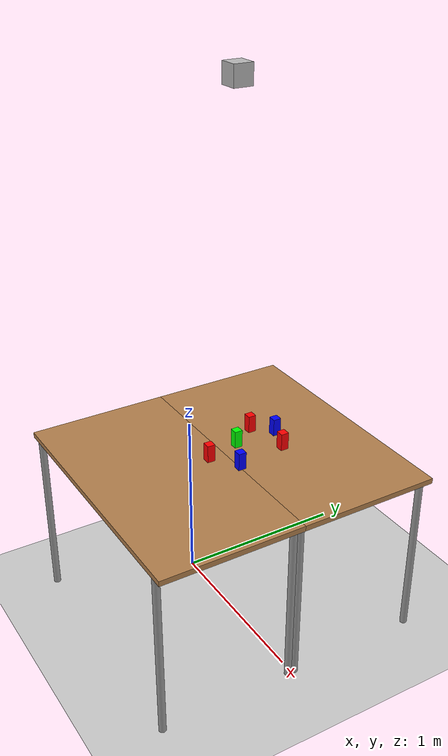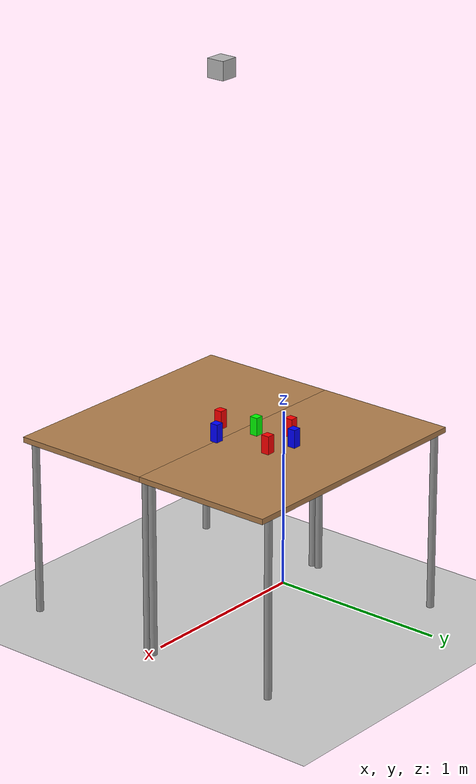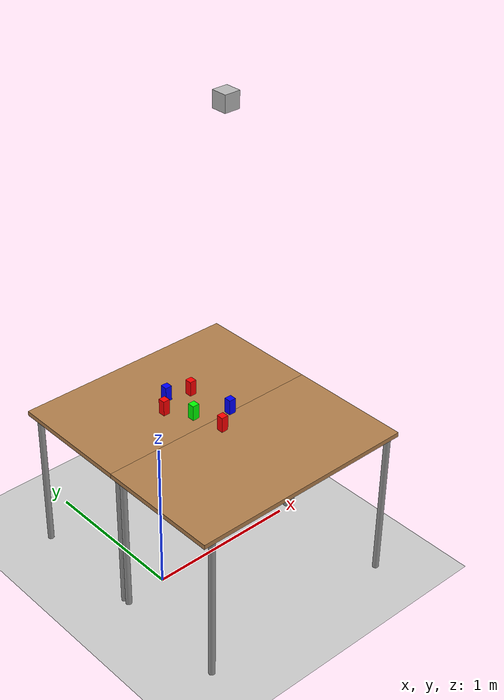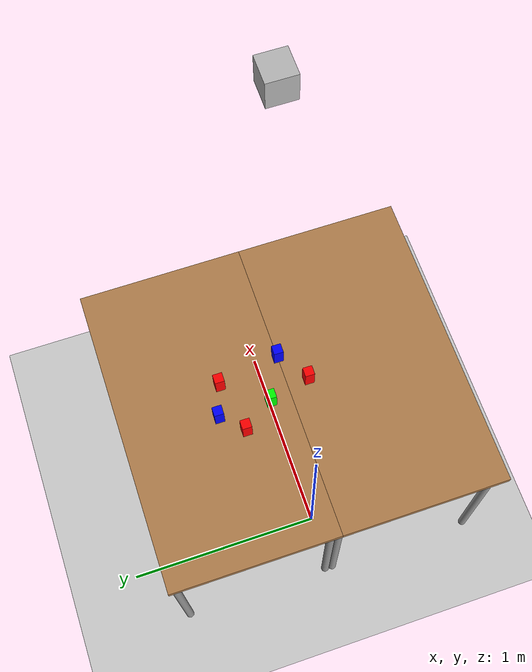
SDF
<sdf version="1.7">
 <world name="default">
  <light name="sun" type="directional">
   <pose>0 0 10 0 -0 0</pose>
   <diffuse>0.8 0.8 0.8 1</diffuse>
   <specular>0.2 0.2 0.2 1</specular>
   <attenuation>
    <range>1000</range>
    <constant>0.9</constant>
    <linear>0.01</linear>
    <quadratic>0.001</quadratic>
   </attenuation>
   <direction>-0.5 0.1 -0.9</direction>
   <spot><inner_angle>0</inner_angle><outer_angle>0</outer_angle><falloff>0</falloff></spot>
  </light>
  <model name="ground_plane">
   <static>1</static>
   <link name="link">
    <collision name="collision">
     <geometry><plane><normal>0 0 1</normal><size>100 100</size></plane></geometry>
     <surface>
      <contact><collide_bitmask>65535</collide_bitmask></contact>
      <friction><ode><mu>100</mu><mu2>50</mu2></ode></friction>
     </surface>
    </collision>
    <visual name="visual">
     <cast_shadows>0</cast_shadows>
     <geometry><plane><normal>0 0 1</normal><size>100 100</size></plane></geometry>
     <material>
      <script><uri>file://media/materials/scripts/gazebo.material</uri><name>Gazebo/Grey</name></script>
     </material>
    </visual>
   </link>
  </model>
  <gravity>0 0 -9.8</gravity>
  <magnetic_field>6e-06 2.3e-05 -4.2e-05</magnetic_field>
  <atmosphere type="adiabatic"/>
  <physics name="default_physics" default="0" type="ode">
   <max_step_size>0.001</max_step_size>
   <real_time_factor>1</real_time_factor>
   <real_time_update_rate>1000</real_time_update_rate>
  </physics>
  <scene><ambient>0.4 0.4 0.4 1</ambient><background>0.7 0.7 0.7 1</background><shadows>0</shadows></scene>
  <audio><device>default</device></audio>
  <spherical_coordinates>
   <surface_model>EARTH_WGS84</surface_model>
   <latitude_deg>0</latitude_deg>
   <longitude_deg>0</longitude_deg>
   <elevation>0</elevation>
   <heading_deg>0</heading_deg>
  </spherical_coordinates>
  <model name="blue_box_2">
   <link name="link">
    <inertial>
     <mass>0.1</mass>
     <inertia>
      <ixx>0.00010417</ixx>
      <ixy>0</ixy>
      <ixz>0</ixz>
      <iyy>0.00010417</iyy>
      <iyz>0</iyz>
      <izz>4.167e-05</izz>
     </inertia>
    </inertial>
    <visual name="visual">
     <geometry><box><size>0.045 0.045 0.1</size></box></geometry>
     <material>
      <script><name>Gazebo/Grey</name><uri>file://media/materials/scripts/gazebo.material</uri></script>
      <shader type="vertex"><normal_map>__default__</normal_map></shader>
      <ambient>0 0 1 1</ambient>
      <diffuse>0 0 1 1</diffuse>
      <specular>0 0 1 1</specular>
      <emissive>0 0 1 1</emissive>
     </material>
    </visual>
    <collision name="collision">
     <geometry><box><size>0.045 0.045 0.1</size></box></geometry>
     <surface>
      <friction>
       <ode><mu>1</mu><mu2>1</mu2><fdir1>0 0 0</fdir1><slip1>0</slip1><slip2>0</slip2></ode>
       <torsional>
        <coefficient>1</coefficient>
        <patch_radius>0</patch_radius>
        <surface_radius>0</surface_radius>
        <use_patch_radius>1</use_patch_radius>
        <ode><slip>0</slip></ode>
       </torsional>
      </friction>
      <bounce><restitution_coefficient>0</restitution_coefficient><threshold>1e+06</threshold></bounce>
      <contact>
       <collide_without_contact>0</collide_without_contact>
       <collide_without_contact_bitmask>1</collide_without_contact_bitmask>
       <collide_bitmask>1</collide_bitmask>
       <ode>
        <soft_cfm>0</soft_cfm>
        <soft_erp>0.2</soft_erp>
        <kp>1e+13</kp>
        <kd>1</kd>
        <max_vel>0.01</max_vel>
        <min_depth>0</min_depth>
       </ode>
       <bullet>
        <split_impulse>1</split_impulse>
        <split_impulse_penetration_threshold>-0.01</split_impulse_penetration_threshold>
        <soft_cfm>0</soft_cfm>
        <soft_erp>0.2</soft_erp>
        <kp>1e+13</kp>
        <kd>1</kd>
       </bullet>
      </contact>
     </surface>
    </collision>
   </link>
   <static>0</static>
   <pose>0.55 0.00019 1.065 -2e-06 4.8e-05 -0.017482</pose>
  </model>
  <model name="green_box_1">
   <link name="link">
    <inertial>
     <mass>0.1</mass>
     <inertia>
      <ixx>0.00010583</ixx>
      <ixy>0</ixy>
      <ixz>0</ixz>
      <iyy>0.00010583</iyy>
      <iyz>0</iyz>
      <izz>4.5e-05</izz>
     </inertia>
    </inertial>
    <visual name="visual">
     <geometry><box><size>0.045 0.045 0.1</size></box></geometry>
     <material>
      <script><name>Gazebo/Grey</name><uri>file://media/materials/scripts/gazebo.material</uri></script>
      <shader type="vertex"><normal_map>__default__</normal_map></shader>
      <ambient>0 1 0 1</ambient>
      <diffuse>0 1 0 1</diffuse>
      <specular>0 1 0 1</specular>
      <emissive>0 1 0 1</emissive>
     </material>
    </visual>
    <collision name="collision">
     <geometry><cylinder><radius>0.03</radius><length>0.1</length></cylinder></geometry>
     <surface>
      <friction>
       <ode><mu>1</mu><mu2>1</mu2><fdir1>0 0 0</fdir1><slip1>0</slip1><slip2>0</slip2></ode>
       <torsional>
        <coefficient>1</coefficient>
        <patch_radius>0</patch_radius>
        <surface_radius>0</surface_radius>
        <use_patch_radius>1</use_patch_radius>
        <ode><slip>0</slip></ode>
       </torsional>
      </friction>
      <bounce><restitution_coefficient>0</restitution_coefficient><threshold>1e+06</threshold></bounce>
      <contact>
       <collide_without_contact>0</collide_without_contact>
       <collide_without_contact_bitmask>1</collide_without_contact_bitmask>
       <collide_bitmask>1</collide_bitmask>
       <ode>
        <soft_cfm>0</soft_cfm>
        <soft_erp>0.2</soft_erp>
        <kp>1e+13</kp>
        <kd>1</kd>
        <max_vel>0.01</max_vel>
        <min_depth>0</min_depth>
       </ode>
       <bullet>
        <split_impulse>1</split_impulse>
        <split_impulse_penetration_threshold>-0.01</split_impulse_penetration_threshold>
        <soft_cfm>0</soft_cfm>
        <soft_erp>0.2</soft_erp>
        <kp>1e+13</kp>
        <kd>1</kd>
       </bullet>
      </contact>
     </surface>
    </collision>
   </link>
   <static>0</static>
   <pose>0.35 0.1 1.065 -3.8e-05 -1e-05 -0.000914</pose>
  </model>
  <plugin name="ros_link_attacher_plugin" filename="libgazebo_ros_link_attacher.so"/>
  <model name="camera">
   <link name="link">
    <inertial>
     <mass>0.1</mass>
     <inertia>
      <ixx>0.00016667</ixx>
      <iyy>0.00016667</iyy>
      <izz>0.00016667</izz>
      <ixy>0</ixy>
      <ixz>0</ixz>
      <iyz>0</iyz>
     </inertia>
    </inertial>
    <sensor name="camera" type="camera">
     <camera>
      <horizontal_fov>1.047</horizontal_fov>
      <image><width>320</width><height>240</height></image>
      <clip><near>0.1</near><far>100</far></clip>
     </camera>
     <always_on>1</always_on>
     <update_rate>30</update_rate>
     <visualize>1</visualize>
     <plugin name="gazebo_ros_camera" filename="libgazebo_ros_camera.so">
      <always_on>1</always_on>
      <update_rate>30.0</update_rate>
      <camera_name>cctv_camera</camera_name>
      <image_topic_name>/cctv_camera/image_raw</image_topic_name>
      <camera_info_topic_name>/cctv_camera/camera_info</camera_info_topic_name>
      <frame_name>camera_link</frame_name>
      <hack_baseline>0.07</hack_baseline>
     </plugin>
    </sensor>
    <gravity>0</gravity>
    <visual name="visual">
     <geometry><box><size>0.1 0.1 0.1</size></box></geometry>
     <material><shader type="pixel"><normal_map>__default__</normal_map></shader></material>
    </visual>
    <collision name="collision">
     <geometry><box><size>0.1 0.1 0.1</size></box></geometry>
     <surface>
      <friction>
       <ode><mu>1</mu><mu2>1</mu2><fdir1>0 0 0</fdir1><slip1>0</slip1><slip2>0</slip2></ode>
       <torsional>
        <coefficient>1</coefficient>
        <patch_radius>0</patch_radius>
        <surface_radius>0</surface_radius>
        <use_patch_radius>1</use_patch_radius>
        <ode><slip>0</slip></ode>
       </torsional>
      </friction>
      <bounce><restitution_coefficient>0</restitution_coefficient><threshold>1e+06</threshold></bounce>
      <contact>
       <collide_without_contact>0</collide_without_contact>
       <collide_without_contact_bitmask>1</collide_without_contact_bitmask>
       <collide_bitmask>1</collide_bitmask>
       <ode>
        <soft_cfm>0</soft_cfm>
        <soft_erp>0.2</soft_erp>
        <kp>1e+13</kp>
        <kd>1</kd>
        <max_vel>0.01</max_vel>
        <min_depth>0</min_depth>
       </ode>
       <bullet>
        <split_impulse>1</split_impulse>
        <split_impulse_penetration_threshold>-0.01</split_impulse_penetration_threshold>
        <soft_cfm>0</soft_cfm>
        <soft_erp>0.2</soft_erp>
        <kp>1e+13</kp>
        <kd>1</kd>
       </bullet>
      </contact>
     </surface>
    </collision>
   </link>
   <static>0</static>
   <pose>0.5 0 3 3.14159 1.57079 3.14159</pose>
  </model>
  <model name="table_0">
   <link name="link">
    <inertial>
     <mass>1</mass>
     <inertia><ixx>1</ixx><ixy>0</ixy><ixz>0</ixz><iyy>1</iyy><iyz>0</iyz><izz>1</izz></inertia>
    </inertial>
    <visual name="visual1">
     <pose>0 0 1 0 -0 0</pose>
     <geometry><box><size>1.5 0.8 0.03</size></box></geometry>
     <material>
      <script><uri>file://media/materials/scripts/gazebo.material</uri><name>Gazebo/Wood</name></script>
      <shader type="pixel"><normal_map>__default__</normal_map></shader>
      <ambient>0.1 0.1 0.1 1</ambient>
      <diffuse>0 0 0 1</diffuse>
      <specular>0 0 0 1</specular>
      <emissive>0 0 0 1</emissive>
     </material>
    </visual>
    <visual name="front_left_leg">
     <pose>0.68 0.38 0.5 0 -0 0</pose>
     <geometry><cylinder><radius>0.02</radius><length>1</length></cylinder></geometry>
     <material>
      <script><uri>file://media/materials/scripts/gazebo.material</uri><name>Gazebo/Grey</name></script>
      <shader type="pixel"><normal_map>__default__</normal_map></shader>
      <ambient>0.3 0.3 0.3 1</ambient>
      <diffuse>0.7 0.7 0.7 1</diffuse>
      <specular>0.01 0.01 0.01 1</specular>
      <emissive>0 0 0 1</emissive>
     </material>
    </visual>
    <visual name="back_left_leg">
     <pose>-0.68 0.38 0.5 0 -0 0</pose>
     <geometry><cylinder><radius>0.02</radius><length>1</length></cylinder></geometry>
     <material>
      <script><uri>file://media/materials/scripts/gazebo.material</uri><name>Gazebo/Grey</name></script>
      <shader type="pixel"><normal_map>__default__</normal_map></shader>
      <ambient>0.3 0.3 0.3 1</ambient>
      <diffuse>0.7 0.7 0.7 1</diffuse>
      <specular>0.01 0.01 0.01 1</specular>
      <emissive>0 0 0 1</emissive>
     </material>
    </visual>
    <visual name="front_right_leg">
     <pose>0.68 -0.38 0.5 0 -0 0</pose>
     <geometry><cylinder><radius>0.02</radius><length>1</length></cylinder></geometry>
     <material>
      <script><uri>file://media/materials/scripts/gazebo.material</uri><name>Gazebo/Grey</name></script>
      <shader type="pixel"><normal_map>__default__</normal_map></shader>
      <ambient>0.3 0.3 0.3 1</ambient>
      <diffuse>0.7 0.7 0.7 1</diffuse>
      <specular>0.01 0.01 0.01 1</specular>
      <emissive>0 0 0 1</emissive>
     </material>
    </visual>
    <visual name="back_right_leg">
     <pose>-0.68 -0.38 0.5 0 -0 0</pose>
     <geometry><cylinder><radius>0.02</radius><length>1</length></cylinder></geometry>
     <material>
      <script><uri>file://media/materials/scripts/gazebo.material</uri><name>Gazebo/Grey</name></script>
      <shader type="pixel"><normal_map>__default__</normal_map></shader>
      <ambient>0.3 0.3 0.3 1</ambient>
      <diffuse>0.7 0.7 0.7 1</diffuse>
      <specular>0.01 0.01 0.01 1</specular>
      <emissive>0 0 0 1</emissive>
     </material>
    </visual>
    <collision name="surface">
     <pose>0 0 1 0 -0 0</pose>
     <geometry><box><size>1.5 0.8 0.03</size></box></geometry>
     <surface>
      <friction>
       <ode><mu>0.6</mu><mu2>0.6</mu2><fdir1>0 0 0</fdir1><slip1>0</slip1><slip2>0</slip2></ode>
       <torsional>
        <coefficient>1</coefficient>
        <patch_radius>0</patch_radius>
        <surface_radius>0</surface_radius>
        <use_patch_radius>1</use_patch_radius>
        <ode><slip>0</slip></ode>
       </torsional>
      </friction>
      <bounce><restitution_coefficient>0</restitution_coefficient><threshold>1e+06</threshold></bounce>
      <contact>
       <collide_without_contact>0</collide_without_contact>
       <collide_without_contact_bitmask>1</collide_without_contact_bitmask>
       <collide_bitmask>1</collide_bitmask>
       <ode>
        <soft_cfm>0</soft_cfm>
        <soft_erp>0.2</soft_erp>
        <kp>1e+13</kp>
        <kd>1</kd>
        <max_vel>0.01</max_vel>
        <min_depth>0</min_depth>
       </ode>
       <bullet>
        <split_impulse>1</split_impulse>
        <split_impulse_penetration_threshold>-0.01</split_impulse_penetration_threshold>
        <soft_cfm>0</soft_cfm>
        <soft_erp>0.2</soft_erp>
        <kp>1e+13</kp>
        <kd>1</kd>
       </bullet>
      </contact>
     </surface>
    </collision>
    <collision name="front_left_leg">
     <pose>0.68 0.38 0.5 0 -0 0</pose>
     <geometry><cylinder><radius>0.02</radius><length>1</length></cylinder></geometry>
     <surface>
      <friction>
       <ode><mu>1</mu><mu2>1</mu2><fdir1>0 0 0</fdir1><slip1>0</slip1><slip2>0</slip2></ode>
       <torsional>
        <coefficient>1</coefficient>
        <patch_radius>0</patch_radius>
        <surface_radius>0</surface_radius>
        <use_patch_radius>1</use_patch_radius>
        <ode><slip>0</slip></ode>
       </torsional>
      </friction>
      <bounce><restitution_coefficient>0</restitution_coefficient><threshold>1e+06</threshold></bounce>
      <contact>
       <collide_without_contact>0</collide_without_contact>
       <collide_without_contact_bitmask>1</collide_without_contact_bitmask>
       <collide_bitmask>1</collide_bitmask>
       <ode>
        <soft_cfm>0</soft_cfm>
        <soft_erp>0.2</soft_erp>
        <kp>1e+13</kp>
        <kd>1</kd>
        <max_vel>0.01</max_vel>
        <min_depth>0</min_depth>
       </ode>
       <bullet>
        <split_impulse>1</split_impulse>
        <split_impulse_penetration_threshold>-0.01</split_impulse_penetration_threshold>
        <soft_cfm>0</soft_cfm>
        <soft_erp>0.2</soft_erp>
        <kp>1e+13</kp>
        <kd>1</kd>
       </bullet>
      </contact>
     </surface>
    </collision>
    <collision name="front_right_leg">
     <pose>0.68 -0.38 0.5 0 -0 0</pose>
     <geometry><cylinder><radius>0.02</radius><length>1</length></cylinder></geometry>
     <surface>
      <friction>
       <ode><mu>1</mu><mu2>1</mu2><fdir1>0 0 0</fdir1><slip1>0</slip1><slip2>0</slip2></ode>
       <torsional>
        <coefficient>1</coefficient>
        <patch_radius>0</patch_radius>
        <surface_radius>0</surface_radius>
        <use_patch_radius>1</use_patch_radius>
        <ode><slip>0</slip></ode>
       </torsional>
      </friction>
      <bounce><restitution_coefficient>0</restitution_coefficient><threshold>1e+06</threshold></bounce>
      <contact>
       <collide_without_contact>0</collide_without_contact>
       <collide_without_contact_bitmask>1</collide_without_contact_bitmask>
       <collide_bitmask>1</collide_bitmask>
       <ode>
        <soft_cfm>0</soft_cfm>
        <soft_erp>0.2</soft_erp>
        <kp>1e+13</kp>
        <kd>1</kd>
        <max_vel>0.01</max_vel>
        <min_depth>0</min_depth>
       </ode>
       <bullet>
        <split_impulse>1</split_impulse>
        <split_impulse_penetration_threshold>-0.01</split_impulse_penetration_threshold>
        <soft_cfm>0</soft_cfm>
        <soft_erp>0.2</soft_erp>
        <kp>1e+13</kp>
        <kd>1</kd>
       </bullet>
      </contact>
     </surface>
    </collision>
    <collision name="back_right_leg">
     <pose>-0.68 -0.38 0.5 0 -0 0</pose>
     <geometry><cylinder><radius>0.02</radius><length>1</length></cylinder></geometry>
     <surface>
      <friction>
       <ode><mu>1</mu><mu2>1</mu2><fdir1>0 0 0</fdir1><slip1>0</slip1><slip2>0</slip2></ode>
       <torsional>
        <coefficient>1</coefficient>
        <patch_radius>0</patch_radius>
        <surface_radius>0</surface_radius>
        <use_patch_radius>1</use_patch_radius>
        <ode><slip>0</slip></ode>
       </torsional>
      </friction>
      <bounce><restitution_coefficient>0</restitution_coefficient><threshold>1e+06</threshold></bounce>
      <contact>
       <collide_without_contact>0</collide_without_contact>
       <collide_without_contact_bitmask>1</collide_without_contact_bitmask>
       <collide_bitmask>1</collide_bitmask>
       <ode>
        <soft_cfm>0</soft_cfm>
        <soft_erp>0.2</soft_erp>
        <kp>1e+13</kp>
        <kd>1</kd>
        <max_vel>0.01</max_vel>
        <min_depth>0</min_depth>
       </ode>
       <bullet>
        <split_impulse>1</split_impulse>
        <split_impulse_penetration_threshold>-0.01</split_impulse_penetration_threshold>
        <soft_cfm>0</soft_cfm>
        <soft_erp>0.2</soft_erp>
        <kp>1e+13</kp>
        <kd>1</kd>
       </bullet>
      </contact>
     </surface>
    </collision>
    <collision name="back_left_leg">
     <pose>-0.68 0.38 0.5 0 -0 0</pose>
     <geometry><cylinder><radius>0.02</radius><length>1</length></cylinder></geometry>
     <surface>
      <friction>
       <ode><mu>1</mu><mu2>1</mu2><fdir1>0 0 0</fdir1><slip1>0</slip1><slip2>0</slip2></ode>
       <torsional>
        <coefficient>1</coefficient>
        <patch_radius>0</patch_radius>
        <surface_radius>0</surface_radius>
        <use_patch_radius>1</use_patch_radius>
        <ode><slip>0</slip></ode>
       </torsional>
      </friction>
      <bounce><restitution_coefficient>0</restitution_coefficient><threshold>1e+06</threshold></bounce>
      <contact>
       <collide_without_contact>0</collide_without_contact>
       <collide_without_contact_bitmask>1</collide_without_contact_bitmask>
       <collide_bitmask>1</collide_bitmask>
       <ode>
        <soft_cfm>0</soft_cfm>
        <soft_erp>0.2</soft_erp>
        <kp>1e+13</kp>
        <kd>1</kd>
        <max_vel>0.01</max_vel>
        <min_depth>0</min_depth>
       </ode>
       <bullet>
        <split_impulse>1</split_impulse>
        <split_impulse_penetration_threshold>-0.01</split_impulse_penetration_threshold>
        <soft_cfm>0</soft_cfm>
        <soft_erp>0.2</soft_erp>
        <kp>1e+13</kp>
        <kd>1</kd>
       </bullet>
      </contact>
     </surface>
    </collision>
   </link>
   <static>1</static>
   <pose>0.4 -0.4 0 0 -0 0</pose>
  </model>
  <model name="table2">
   <link name="link">
    <inertial>
     <mass>1</mass>
     <inertia><ixx>1</ixx><ixy>0</ixy><ixz>0</ixz><iyy>1</iyy><iyz>0</iyz><izz>1</izz></inertia>
    </inertial>
    <visual name="visual1">
     <pose>0 0 1 0 -0 0</pose>
     <geometry><box><size>1.5 0.8 0.03</size></box></geometry>
     <material>
      <script><uri>file://media/materials/scripts/gazebo.material</uri><name>Gazebo/Wood</name></script>
      <shader type="pixel"><normal_map>__default__</normal_map></shader>
      <ambient>0.1 0.1 0.1 1</ambient>
      <diffuse>0 0 0 1</diffuse>
      <specular>0 0 0 1</specular>
      <emissive>0 0 0 1</emissive>
     </material>
    </visual>
    <visual name="front_left_leg">
     <pose>0.68 0.38 0.5 0 -0 0</pose>
     <geometry><cylinder><radius>0.02</radius><length>1</length></cylinder></geometry>
     <material>
      <script><uri>file://media/materials/scripts/gazebo.material</uri><name>Gazebo/Grey</name></script>
      <shader type="pixel"><normal_map>__default__</normal_map></shader>
      <ambient>0.3 0.3 0.3 1</ambient>
      <diffuse>0.7 0.7 0.7 1</diffuse>
      <specular>0.01 0.01 0.01 1</specular>
      <emissive>0 0 0 1</emissive>
     </material>
    </visual>
    <visual name="front_right_leg">
     <pose>0.68 -0.38 0.5 0 -0 0</pose>
     <geometry><cylinder><radius>0.02</radius><length>1</length></cylinder></geometry>
     <material>
      <script><uri>file://media/materials/scripts/gazebo.material</uri><name>Gazebo/Grey</name></script>
      <shader type="pixel"><normal_map>__default__</normal_map></shader>
      <ambient>0.3 0.3 0.3 1</ambient>
      <diffuse>0.7 0.7 0.7 1</diffuse>
      <specular>0.01 0.01 0.01 1</specular>
      <emissive>0 0 0 1</emissive>
     </material>
    </visual>
    <visual name="back_right_leg">
     <pose>-0.68 -0.38 0.5 0 -0 0</pose>
     <geometry><cylinder><radius>0.02</radius><length>1</length></cylinder></geometry>
     <material>
      <script><uri>file://media/materials/scripts/gazebo.material</uri><name>Gazebo/Grey</name></script>
      <shader type="pixel"><normal_map>__default__</normal_map></shader>
      <ambient>0.3 0.3 0.3 1</ambient>
      <diffuse>0.7 0.7 0.7 1</diffuse>
      <specular>0.01 0.01 0.01 1</specular>
      <emissive>0 0 0 1</emissive>
     </material>
    </visual>
    <visual name="back_left_leg">
     <pose>-0.68 0.38 0.5 0 -0 0</pose>
     <geometry><cylinder><radius>0.02</radius><length>1</length></cylinder></geometry>
     <material>
      <script><uri>file://media/materials/scripts/gazebo.material</uri><name>Gazebo/Grey</name></script>
      <shader type="pixel"><normal_map>__default__</normal_map></shader>
      <ambient>0.3 0.3 0.3 1</ambient>
      <diffuse>0.7 0.7 0.7 1</diffuse>
      <specular>0.01 0.01 0.01 1</specular>
      <emissive>0 0 0 1</emissive>
     </material>
    </visual>
    <collision name="surface">
     <pose>0 0 1 0 -0 0</pose>
     <geometry><box><size>1.5 0.8 0.03</size></box></geometry>
     <surface>
      <friction>
       <ode><mu>0.6</mu><mu2>0.6</mu2><fdir1>0 0 0</fdir1><slip1>0</slip1><slip2>0</slip2></ode>
       <torsional>
        <coefficient>1</coefficient>
        <patch_radius>0</patch_radius>
        <surface_radius>0</surface_radius>
        <use_patch_radius>1</use_patch_radius>
        <ode><slip>0</slip></ode>
       </torsional>
      </friction>
      <bounce><restitution_coefficient>0</restitution_coefficient><threshold>1e+06</threshold></bounce>
      <contact>
       <collide_without_contact>0</collide_without_contact>
       <collide_without_contact_bitmask>1</collide_without_contact_bitmask>
       <collide_bitmask>1</collide_bitmask>
       <ode>
        <soft_cfm>0</soft_cfm>
        <soft_erp>0.2</soft_erp>
        <kp>1e+13</kp>
        <kd>1</kd>
        <max_vel>0.01</max_vel>
        <min_depth>0</min_depth>
       </ode>
       <bullet>
        <split_impulse>1</split_impulse>
        <split_impulse_penetration_threshold>-0.01</split_impulse_penetration_threshold>
        <soft_cfm>0</soft_cfm>
        <soft_erp>0.2</soft_erp>
        <kp>1e+13</kp>
        <kd>1</kd>
       </bullet>
      </contact>
     </surface>
    </collision>
    <collision name="front_left_leg">
     <pose>0.68 0.38 0.5 0 -0 0</pose>
     <geometry><cylinder><radius>0.02</radius><length>1</length></cylinder></geometry>
     <surface>
      <friction>
       <ode><mu>1</mu><mu2>1</mu2><fdir1>0 0 0</fdir1><slip1>0</slip1><slip2>0</slip2></ode>
       <torsional>
        <coefficient>1</coefficient>
        <patch_radius>0</patch_radius>
        <surface_radius>0</surface_radius>
        <use_patch_radius>1</use_patch_radius>
        <ode><slip>0</slip></ode>
       </torsional>
      </friction>
      <bounce><restitution_coefficient>0</restitution_coefficient><threshold>1e+06</threshold></bounce>
      <contact>
       <collide_without_contact>0</collide_without_contact>
       <collide_without_contact_bitmask>1</collide_without_contact_bitmask>
       <collide_bitmask>1</collide_bitmask>
       <ode>
        <soft_cfm>0</soft_cfm>
        <soft_erp>0.2</soft_erp>
        <kp>1e+13</kp>
        <kd>1</kd>
        <max_vel>0.01</max_vel>
        <min_depth>0</min_depth>
       </ode>
       <bullet>
        <split_impulse>1</split_impulse>
        <split_impulse_penetration_threshold>-0.01</split_impulse_penetration_threshold>
        <soft_cfm>0</soft_cfm>
        <soft_erp>0.2</soft_erp>
        <kp>1e+13</kp>
        <kd>1</kd>
       </bullet>
      </contact>
     </surface>
    </collision>
    <collision name="front_right_leg">
     <pose>0.68 -0.38 0.5 0 -0 0</pose>
     <geometry><cylinder><radius>0.02</radius><length>1</length></cylinder></geometry>
     <surface>
      <friction>
       <ode><mu>1</mu><mu2>1</mu2><fdir1>0 0 0</fdir1><slip1>0</slip1><slip2>0</slip2></ode>
       <torsional>
        <coefficient>1</coefficient>
        <patch_radius>0</patch_radius>
        <surface_radius>0</surface_radius>
        <use_patch_radius>1</use_patch_radius>
        <ode><slip>0</slip></ode>
       </torsional>
      </friction>
      <bounce><restitution_coefficient>0</restitution_coefficient><threshold>1e+06</threshold></bounce>
      <contact>
       <collide_without_contact>0</collide_without_contact>
       <collide_without_contact_bitmask>1</collide_without_contact_bitmask>
       <collide_bitmask>1</collide_bitmask>
       <ode>
        <soft_cfm>0</soft_cfm>
        <soft_erp>0.2</soft_erp>
        <kp>1e+13</kp>
        <kd>1</kd>
        <max_vel>0.01</max_vel>
        <min_depth>0</min_depth>
       </ode>
       <bullet>
        <split_impulse>1</split_impulse>
        <split_impulse_penetration_threshold>-0.01</split_impulse_penetration_threshold>
        <soft_cfm>0</soft_cfm>
        <soft_erp>0.2</soft_erp>
        <kp>1e+13</kp>
        <kd>1</kd>
       </bullet>
      </contact>
     </surface>
    </collision>
    <collision name="back_right_leg">
     <pose>-0.68 -0.38 0.5 0 -0 0</pose>
     <geometry><cylinder><radius>0.02</radius><length>1</length></cylinder></geometry>
     <surface>
      <friction>
       <ode><mu>1</mu><mu2>1</mu2><fdir1>0 0 0</fdir1><slip1>0</slip1><slip2>0</slip2></ode>
       <torsional>
        <coefficient>1</coefficient>
        <patch_radius>0</patch_radius>
        <surface_radius>0</surface_radius>
        <use_patch_radius>1</use_patch_radius>
        <ode><slip>0</slip></ode>
       </torsional>
      </friction>
      <bounce><restitution_coefficient>0</restitution_coefficient><threshold>1e+06</threshold></bounce>
      <contact>
       <collide_without_contact>0</collide_without_contact>
       <collide_without_contact_bitmask>1</collide_without_contact_bitmask>
       <collide_bitmask>1</collide_bitmask>
       <ode>
        <soft_cfm>0</soft_cfm>
        <soft_erp>0.2</soft_erp>
        <kp>1e+13</kp>
        <kd>1</kd>
        <max_vel>0.01</max_vel>
        <min_depth>0</min_depth>
       </ode>
       <bullet>
        <split_impulse>1</split_impulse>
        <split_impulse_penetration_threshold>-0.01</split_impulse_penetration_threshold>
        <soft_cfm>0</soft_cfm>
        <soft_erp>0.2</soft_erp>
        <kp>1e+13</kp>
        <kd>1</kd>
       </bullet>
      </contact>
     </surface>
    </collision>
    <collision name="back_left_leg">
     <pose>-0.68 0.38 0.5 0 -0 0</pose>
     <geometry><cylinder><radius>0.02</radius><length>1</length></cylinder></geometry>
     <surface>
      <friction>
       <ode><mu>1</mu><mu2>1</mu2><fdir1>0 0 0</fdir1><slip1>0</slip1><slip2>0</slip2></ode>
       <torsional>
        <coefficient>1</coefficient>
        <patch_radius>0</patch_radius>
        <surface_radius>0</surface_radius>
        <use_patch_radius>1</use_patch_radius>
        <ode><slip>0</slip></ode>
       </torsional>
      </friction>
      <bounce><restitution_coefficient>0</restitution_coefficient><threshold>1e+06</threshold></bounce>
      <contact>
       <collide_without_contact>0</collide_without_contact>
       <collide_without_contact_bitmask>1</collide_without_contact_bitmask>
       <collide_bitmask>1</collide_bitmask>
       <ode>
        <soft_cfm>0</soft_cfm>
        <soft_erp>0.2</soft_erp>
        <kp>1e+13</kp>
        <kd>1</kd>
        <max_vel>0.01</max_vel>
        <min_depth>0</min_depth>
       </ode>
       <bullet>
        <split_impulse>1</split_impulse>
        <split_impulse_penetration_threshold>-0.01</split_impulse_penetration_threshold>
        <soft_cfm>0</soft_cfm>
        <soft_erp>0.2</soft_erp>
        <kp>1e+13</kp>
        <kd>1</kd>
       </bullet>
      </contact>
     </surface>
    </collision>
   </link>
   <static>1</static>
   <pose>0.4 0.4 0 0 -0 0</pose>
  </model>
  <model name="blue_box_1">
   <link name="link">
    <inertial>
     <mass>0.1</mass>
     <inertia>
      <ixx>0.00010417</ixx>
      <ixy>0</ixy>
      <ixz>0</ixz>
      <iyy>0.00010417</iyy>
      <iyz>0</iyz>
      <izz>4.167e-05</izz>
     </inertia>
    </inertial>
    <visual name="visual">
     <geometry><box><size>0.045 0.045 0.1</size></box></geometry>
     <material>
      <script><name>Gazebo/Grey</name><uri>file://media/materials/scripts/gazebo.material</uri></script>
      <shader type="vertex"><normal_map>__default__</normal_map></shader>
      <ambient>0 0 1 1</ambient>
      <diffuse>0 0 1 1</diffuse>
      <specular>0 0 1 1</specular>
      <emissive>0 0 1 1</emissive>
     </material>
    </visual>
    <collision name="collision">
     <geometry><box><size>0.045 0.045 0.1</size></box></geometry>
     <surface>
      <friction>
       <ode><mu>1</mu><mu2>1</mu2><fdir1>0 0 0</fdir1><slip1>0</slip1><slip2>0</slip2></ode>
       <torsional>
        <coefficient>1</coefficient>
        <patch_radius>0</patch_radius>
        <surface_radius>0</surface_radius>
        <use_patch_radius>1</use_patch_radius>
        <ode><slip>0</slip></ode>
       </torsional>
      </friction>
      <bounce><restitution_coefficient>0</restitution_coefficient><threshold>1e+06</threshold></bounce>
      <contact>
       <collide_without_contact>0</collide_without_contact>
       <collide_without_contact_bitmask>1</collide_without_contact_bitmask>
       <collide_bitmask>1</collide_bitmask>
       <ode>
        <soft_cfm>0</soft_cfm>
        <soft_erp>0.2</soft_erp>
        <kp>1e+13</kp>
        <kd>1</kd>
        <max_vel>0.01</max_vel>
        <min_depth>0</min_depth>
       </ode>
       <bullet>
        <split_impulse>1</split_impulse>
        <split_impulse_penetration_threshold>-0.01</split_impulse_penetration_threshold>
        <soft_cfm>0</soft_cfm>
        <soft_erp>0.2</soft_erp>
        <kp>1e+13</kp>
        <kd>1</kd>
       </bullet>
      </contact>
     </surface>
    </collision>
   </link>
   <static>0</static>
   <pose>0.35 0.350003 1.065 6e-06 -1.8e-05 -0.013852</pose>
  </model>
  <model name="red_box_3">
   <link name="link">
    <inertial>
     <mass>0.1</mass>
     <inertia>
      <ixx>0.00010417</ixx>
      <ixy>0</ixy>
      <ixz>0</ixz>
      <iyy>0.00010417</iyy>
      <iyz>0</iyz>
      <izz>4.167e-05</izz>
     </inertia>
    </inertial>
    <visual name="visual">
     <geometry><box><size>0.045 0.045 0.1</size></box></geometry>
     <material>
      <script><name>Gazebo/Grey</name><uri>file://media/materials/scripts/gazebo.material</uri></script>
      <shader type="vertex"><normal_map>__default__</normal_map></shader>
      <ambient>1 0 0 1</ambient>
      <diffuse>1 0 0 1</diffuse>
      <specular>1 0 0 1</specular>
      <emissive>1 0 0 1</emissive>
     </material>
    </visual>
    <collision name="collision">
     <geometry><box><size>0.045 0.045 0.1</size></box></geometry>
     <surface>
      <friction>
       <ode><mu>1</mu><mu2>1</mu2><fdir1>0 0 0</fdir1><slip1>0</slip1><slip2>0</slip2></ode>
       <torsional>
        <coefficient>1</coefficient>
        <patch_radius>0</patch_radius>
        <surface_radius>0</surface_radius>
        <use_patch_radius>1</use_patch_radius>
        <ode><slip>0</slip></ode>
       </torsional>
      </friction>
      <bounce><restitution_coefficient>0</restitution_coefficient><threshold>1e+06</threshold></bounce>
      <contact>
       <collide_without_contact>0</collide_without_contact>
       <collide_without_contact_bitmask>1</collide_without_contact_bitmask>
       <collide_bitmask>1</collide_bitmask>
       <ode>
        <soft_cfm>0</soft_cfm>
        <soft_erp>0.2</soft_erp>
        <kp>1e+13</kp>
        <kd>1</kd>
        <max_vel>0.01</max_vel>
        <min_depth>0</min_depth>
       </ode>
       <bullet>
        <split_impulse>1</split_impulse>
        <split_impulse_penetration_threshold>-0.01</split_impulse_penetration_threshold>
        <soft_cfm>0</soft_cfm>
        <soft_erp>0.2</soft_erp>
        <kp>1e+13</kp>
        <kd>1</kd>
       </bullet>
      </contact>
     </surface>
    </collision>
   </link>
   <static>0</static>
   <pose>0.5 0.300005 1.065 1e-05 -6e-06 9.4e-05</pose>
  </model>
  <model name="red_box_1">
   <link name="link">
    <inertial>
     <mass>0.1</mass>
     <inertia>
      <ixx>0.00010417</ixx>
      <ixy>0</ixy>
      <ixz>0</ixz>
      <iyy>0.00010417</iyy>
      <iyz>0</iyz>
      <izz>4.167e-05</izz>
     </inertia>
    </inertial>
    <visual name="visual">
     <geometry><box><size>0.045 0.045 0.1</size></box></geometry>
     <material>
      <script><name>Gazebo/Grey</name><uri>file://media/materials/scripts/gazebo.material</uri></script>
      <shader type="vertex"><normal_map>__default__</normal_map></shader>
      <ambient>1 0 0 1</ambient>
      <diffuse>1 0 0 1</diffuse>
      <specular>1 0 0 1</specular>
      <emissive>1 0 0 1</emissive>
     </material>
    </visual>
    <collision name="collision">
     <geometry><box><size>0.045 0.045 0.1</size></box></geometry>
     <surface>
      <friction>
       <ode><mu>1</mu><mu2>1</mu2><fdir1>0 0 0</fdir1><slip1>0</slip1><slip2>0</slip2></ode>
       <torsional>
        <coefficient>1</coefficient>
        <patch_radius>0</patch_radius>
        <surface_radius>0</surface_radius>
        <use_patch_radius>1</use_patch_radius>
        <ode><slip>0</slip></ode>
       </torsional>
      </friction>
      <bounce><restitution_coefficient>0</restitution_coefficient><threshold>1e+06</threshold></bounce>
      <contact>
       <collide_without_contact>0</collide_without_contact>
       <collide_without_contact_bitmask>1</collide_without_contact_bitmask>
       <collide_bitmask>1</collide_bitmask>
       <ode>
        <soft_cfm>0</soft_cfm>
        <soft_erp>0.2</soft_erp>
        <kp>1e+13</kp>
        <kd>1</kd>
        <max_vel>0.01</max_vel>
        <min_depth>0</min_depth>
       </ode>
       <bullet>
        <split_impulse>1</split_impulse>
        <split_impulse_penetration_threshold>-0.01</split_impulse_penetration_threshold>
        <soft_cfm>0</soft_cfm>
        <soft_erp>0.2</soft_erp>
        <kp>1e+13</kp>
        <kd>1</kd>
       </bullet>
      </contact>
     </surface>
    </collision>
   </link>
   <static>0</static>
   <pose>0.25 0.25 1.065 8e-06 -8e-06 0.000126</pose>
  </model>
  <model name="red_box_2">
   <link name="link">
    <inertial>
     <mass>0.1</mass>
     <inertia>
      <ixx>0.00010417</ixx>
      <ixy>0</ixy>
      <ixz>0</ixz>
      <iyy>0.00010417</iyy>
      <iyz>0</iyz>
      <izz>4.167e-05</izz>
     </inertia>
    </inertial>
    <visual name="visual">
     <geometry><box><size>0.045 0.045 0.1</size></box></geometry>
     <material>
      <script><name>Gazebo/Grey</name><uri>file://media/materials/scripts/gazebo.material</uri></script>
      <shader type="vertex"><normal_map>__default__</normal_map></shader>
      <ambient>1 0 0 1</ambient>
      <diffuse>1 0 0 1</diffuse>
      <specular>1 0 0 1</specular>
      <emissive>1 0 0 1</emissive>
     </material>
    </visual>
    <collision name="collision">
     <geometry><box><size>0.045 0.045 0.1</size></box></geometry>
     <surface>
      <friction>
       <ode><mu>1</mu><mu2>1</mu2><fdir1>0 0 0</fdir1><slip1>0</slip1><slip2>0</slip2></ode>
       <torsional>
        <coefficient>1</coefficient>
        <patch_radius>0</patch_radius>
        <surface_radius>0</surface_radius>
        <use_patch_radius>1</use_patch_radius>
        <ode><slip>0</slip></ode>
       </torsional>
      </friction>
      <bounce><restitution_coefficient>0</restitution_coefficient><threshold>1e+06</threshold></bounce>
      <contact>
       <collide_without_contact>0</collide_without_contact>
       <collide_without_contact_bitmask>1</collide_without_contact_bitmask>
       <collide_bitmask>1</collide_bitmask>
       <ode>
        <soft_cfm>0</soft_cfm>
        <soft_erp>0.2</soft_erp>
        <kp>1e+13</kp>
        <kd>1</kd>
        <max_vel>0.01</max_vel>
        <min_depth>0</min_depth>
       </ode>
       <bullet>
        <split_impulse>1</split_impulse>
        <split_impulse_penetration_threshold>-0.01</split_impulse_penetration_threshold>
        <soft_cfm>0</soft_cfm>
        <soft_erp>0.2</soft_erp>
        <kp>1e+13</kp>
        <kd>1</kd>
       </bullet>
      </contact>
     </surface>
    </collision>
   </link>
   <static>0</static>
   <pose>0.4 -0.1 1.065 1e-05 -1e-05 -0.013824</pose>
  </model>
 </world>
</sdf>
